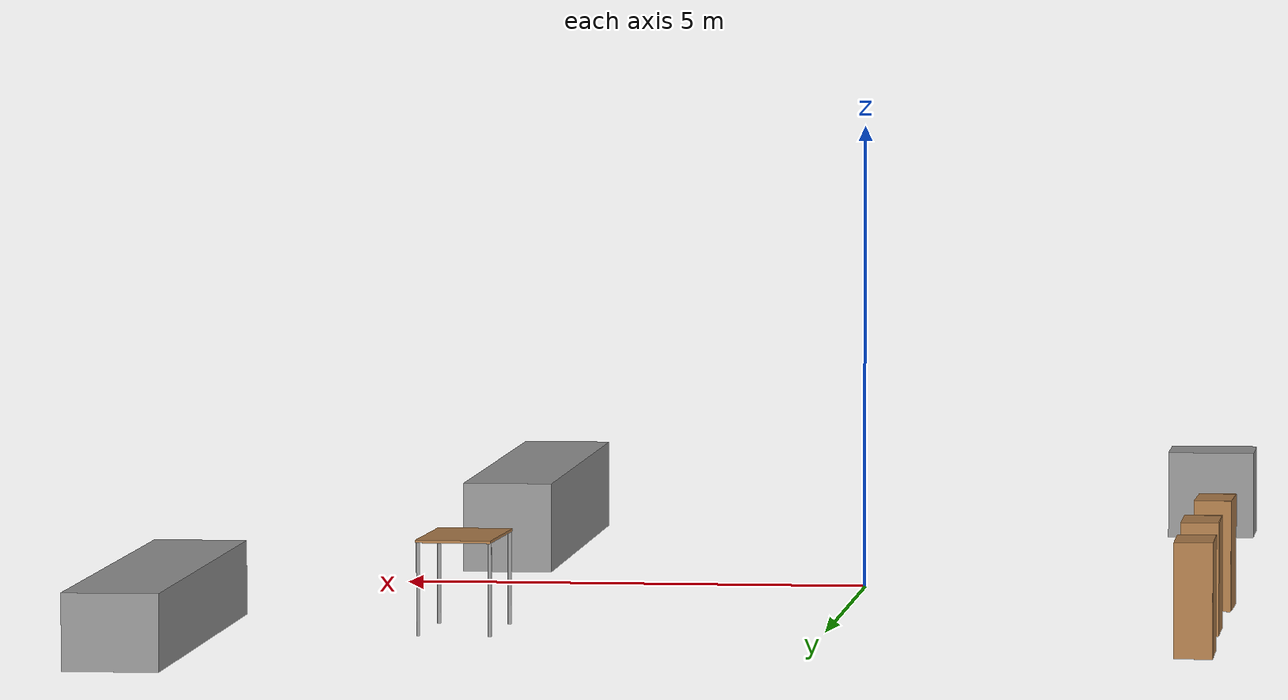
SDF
<?xml version='1.0'?>
<sdf version='1.6'>
  <model name='living_room'>
    <link name='link_2'>
      <pose frame=''>4.32874 -6.4237 0.299392 0 -0 0</pose>
      <inertial>
        <mass>1</mass>
        <inertia>
          <ixx>0.166667</ixx>
          <ixy>0</ixy>
          <ixz>0</ixz>
          <iyy>0.166667</iyy>
          <iyz>0</iyz>
          <izz>0.166667</izz>
        </inertia>
        <pose frame=''>0 0 0 0 -0 0</pose>
      </inertial>
      <gravity>1</gravity>
      <self_collide>0</self_collide>
      <kinematic>0</kinematic>
      <visual name='visual'>
        <pose frame=''>0 0 0 0 -0 0</pose>
        <geometry>
          <box>
            <size>1 6 1</size>
          </box>
        </geometry>
        <material>
          <lighting>1</lighting>
          <script>
            <uri>file://media/materials/scripts/gazebo.material</uri>
            <name>Gazebo/Grey</name>
          </script>
          <shader type='pixel'>
            <normal_map>__default__</normal_map>
          </shader>
          <ambient>0.3 0.3 0.3 1</ambient>
          <diffuse>0.7 0.7 0.7 1</diffuse>
          <specular>0.01 0.01 0.01 1</specular>
          <emissive>0 0 0 1</emissive>
        </material>
        <transparency>0</transparency>
        <cast_shadows>1</cast_shadows>
      </visual>
      <collision name='collision'>
        <laser_retro>0</laser_retro>
        <max_contacts>10</max_contacts>
        <pose frame=''>0 0 0 0 -0 0</pose>
        <geometry>
          <box>
            <size>1 6 1</size>
          </box>
        </geometry>
        <surface>
          <friction>
            <ode>
              <mu>1</mu>
              <mu2>1</mu2>
              <fdir1>0 0 0</fdir1>
              <slip1>0</slip1>
              <slip2>0</slip2>
            </ode>
            <torsional>
              <coefficient>1</coefficient>
              <patch_radius>0</patch_radius>
              <surface_radius>0</surface_radius>
              <use_patch_radius>1</use_patch_radius>
              <ode>
                <slip>0</slip>
              </ode>
            </torsional>
          </friction>
          <bounce>
            <restitution_coefficient>0</restitution_coefficient>
            <threshold>1e+06</threshold>
          </bounce>
          <contact>
            <collide_without_contact>0</collide_without_contact>
            <collide_without_contact_bitmask>1</collide_without_contact_bitmask>
            <collide_bitmask>1</collide_bitmask>
            <ode>
              <soft_cfm>0</soft_cfm>
              <soft_erp>0.2</soft_erp>
              <kp>1e+13</kp>
              <kd>1</kd>
              <max_vel>0.01</max_vel>
              <min_depth>0</min_depth>
            </ode>
            <bullet>
              <split_impulse>1</split_impulse>
              <split_impulse_penetration_threshold>-0.01</split_impulse_penetration_threshold>
              <soft_cfm>0</soft_cfm>
              <soft_erp>0.2</soft_erp>
              <kp>1e+13</kp>
              <kd>1</kd>
            </bullet>
          </contact>
        </surface>
      </collision>
    </link>
    <link name='link_2_clone'>
      <pose frame=''>7.02639 4.75582 0.203645 0 -0 0</pose>
      <inertial>
        <mass>1</mass>
        <inertia>
          <ixx>0.166667</ixx>
          <ixy>0</ixy>
          <ixz>0</ixz>
          <iyy>0.166667</iyy>
          <iyz>0</iyz>
          <izz>0.166667</izz>
        </inertia>
        <pose frame=''>0 0 0 0 -0 0</pose>
      </inertial>
      <self_collide>0</self_collide>
      <kinematic>0</kinematic>
      <gravity>1</gravity>
      <visual name='visual'>
        <pose frame=''>0 0 0 0 -0 0</pose>
        <geometry>
          <box>
            <size>1 6 0.8</size>
          </box>
        </geometry>
        <material>
          <lighting>1</lighting>
          <script>
            <uri>file://media/materials/scripts/gazebo.material</uri>
            <name>Gazebo/Grey</name>
          </script>
          <shader type='pixel'>
            <normal_map>__default__</normal_map>
          </shader>
          <ambient>0.3 0.3 0.3 1</ambient>
          <diffuse>0.7 0.7 0.7 1</diffuse>
          <specular>0.01 0.01 0.01 1</specular>
          <emissive>0 0 0 1</emissive>
        </material>
        <transparency>0</transparency>
        <cast_shadows>1</cast_shadows>
      </visual>
      <collision name='collision'>
        <laser_retro>0</laser_retro>
        <max_contacts>10</max_contacts>
        <pose frame=''>0 0 0 0 -0 0</pose>
        <geometry>
          <box>
            <size>1 6 0.8</size>
          </box>
        </geometry>
        <surface>
          <friction>
            <ode>
              <mu>1</mu>
              <mu2>1</mu2>
              <fdir1>0 0 0</fdir1>
              <slip1>0</slip1>
              <slip2>0</slip2>
            </ode>
            <torsional>
              <coefficient>1</coefficient>
              <patch_radius>0</patch_radius>
              <surface_radius>0</surface_radius>
              <use_patch_radius>1</use_patch_radius>
              <ode>
                <slip>0</slip>
              </ode>
            </torsional>
          </friction>
          <bounce>
            <restitution_coefficient>0</restitution_coefficient>
            <threshold>1e+06</threshold>
          </bounce>
          <contact>
            <collide_without_contact>0</collide_without_contact>
            <collide_without_contact_bitmask>1</collide_without_contact_bitmask>
            <collide_bitmask>1</collide_bitmask>
            <ode>
              <soft_cfm>0</soft_cfm>
              <soft_erp>0.2</soft_erp>
              <kp>1e+13</kp>
              <kd>1</kd>
              <max_vel>0.01</max_vel>
              <min_depth>0</min_depth>
            </ode>
            <bullet>
              <split_impulse>1</split_impulse>
              <split_impulse_penetration_threshold>-0.01</split_impulse_penetration_threshold>
              <soft_cfm>0</soft_cfm>
              <soft_erp>0.2</soft_erp>
              <kp>1e+13</kp>
              <kd>1</kd>
            </bullet>
          </contact>
        </surface>
      </collision>
    </link>
    <link name='link_3'>
      <pose frame=''>-3.39339 -8.98254 0.299392 0 -0 0</pose>
      <inertial>
        <mass>1</mass>
        <inertia>
          <ixx>0.166667</ixx>
          <ixy>0</ixy>
          <ixz>0</ixz>
          <iyy>0.166667</iyy>
          <iyz>0</iyz>
          <izz>0.166667</izz>
        </inertia>
        <pose frame=''>0 0 0 0 -0 0</pose>
      </inertial>
      <gravity>1</gravity>
      <self_collide>0</self_collide>
      <kinematic>0</kinematic>
      <visual name='visual'>
        <pose frame=''>0 0 0 0 -0 0</pose>
        <geometry>
          <box>
            <size>1 1 1</size>
          </box>
        </geometry>
        <material>
          <lighting>1</lighting>
          <script>
            <uri>file://media/materials/scripts/gazebo.material</uri>
            <name>Gazebo/Grey</name>
          </script>
          <shader type='pixel'>
            <normal_map>__default__</normal_map>
          </shader>
          <ambient>0.3 0.3 0.3 1</ambient>
          <diffuse>0.7 0.7 0.7 1</diffuse>
          <specular>0.01 0.01 0.01 1</specular>
          <emissive>0 0 0 1</emissive>
        </material>
        <transparency>0</transparency>
        <cast_shadows>1</cast_shadows>
      </visual>
      <collision name='collision'>
        <laser_retro>0</laser_retro>
        <max_contacts>10</max_contacts>
        <pose frame=''>0 0 0 0 -0 0</pose>
        <geometry>
          <box>
            <size>1 1 1</size>
          </box>
        </geometry>
        <surface>
          <friction>
            <ode>
              <mu>1</mu>
              <mu2>1</mu2>
              <fdir1>0 0 0</fdir1>
              <slip1>0</slip1>
              <slip2>0</slip2>
            </ode>
            <torsional>
              <coefficient>1</coefficient>
              <patch_radius>0</patch_radius>
              <surface_radius>0</surface_radius>
              <use_patch_radius>1</use_patch_radius>
              <ode>
                <slip>0</slip>
              </ode>
            </torsional>
          </friction>
          <bounce>
            <restitution_coefficient>0</restitution_coefficient>
            <threshold>1e+06</threshold>
          </bounce>
          <contact>
            <collide_without_contact>0</collide_without_contact>
            <collide_without_contact_bitmask>1</collide_without_contact_bitmask>
            <collide_bitmask>1</collide_bitmask>
            <ode>
              <soft_cfm>0</soft_cfm>
              <soft_erp>0.2</soft_erp>
              <kp>1e+13</kp>
              <kd>1</kd>
              <max_vel>0.01</max_vel>
              <min_depth>0</min_depth>
            </ode>
            <bullet>
              <split_impulse>1</split_impulse>
              <split_impulse_penetration_threshold>-0.01</split_impulse_penetration_threshold>
              <soft_cfm>0</soft_cfm>
              <soft_erp>0.2</soft_erp>
              <kp>1e+13</kp>
              <kd>1</kd>
            </bullet>
          </contact>
        </surface>
      </collision>
    </link>
    <model name='bookshelf'>
      <static>1</static>
      <link name='link'>
        <inertial>
          <mass>1</mass>
        </inertial>
        <collision name='back'>
          <pose frame=''>0 0.005 0.6 0 -0 0</pose>
          <geometry>
            <box>
              <size>0.9 0.01 1.2</size>
            </box>
          </geometry>
        </collision>
        <visual name='visual1'>
          <pose frame=''>0 0.005 0.6 0 -0 0</pose>
          <geometry>
            <box>
              <size>0.9 0.01 1.2</size>
            </box>
          </geometry>
          <material>
            <script>
              <uri>file://media/materials/scripts/gazebo.material</uri>
              <name>Gazebo/Wood</name>
            </script>
          </material>
        </visual>
        <collision name='left_side'>
          <pose frame=''>0.45 -0.195 0.6 0 -0 0</pose>
          <geometry>
            <box>
              <size>0.02 0.4 1.2</size>
            </box>
          </geometry>
        </collision>
        <visual name='visual2'>
          <pose frame=''>0.45 -0.195 0.6 0 -0 0</pose>
          <geometry>
            <box>
              <size>0.02 0.4 1.2</size>
            </box>
          </geometry>
          <material>
            <script>
              <uri>file://media/materials/scripts/gazebo.material</uri>
              <name>Gazebo/Wood</name>
            </script>
          </material>
        </visual>
        <collision name='right_side'>
          <pose frame=''>-0.45 -0.195 0.6 0 -0 0</pose>
          <geometry>
            <box>
              <size>0.02 0.4 1.2</size>
            </box>
          </geometry>
        </collision>
        <visual name='visual3'>
          <pose frame=''>-0.45 -0.195 0.6 0 -0 0</pose>
          <geometry>
            <box>
              <size>0.02 0.4 1.2</size>
            </box>
          </geometry>
          <material>
            <script>
              <uri>file://media/materials/scripts/gazebo.material</uri>
              <name>Gazebo/Wood</name>
            </script>
          </material>
        </visual>
        <collision name='bottom'>
          <pose frame=''>0 -0.195 0.03 0 -0 0</pose>
          <geometry>
            <box>
              <size>0.88 0.4 0.06</size>
            </box>
          </geometry>
        </collision>
        <visual name='visual4'>
          <pose frame=''>0 -0.195 0.03 0 -0 0</pose>
          <geometry>
            <box>
              <size>0.88 0.4 0.06</size>
            </box>
          </geometry>
          <material>
            <script>
              <uri>file://media/materials/scripts/gazebo.material</uri>
              <name>Gazebo/Wood</name>
            </script>
          </material>
        </visual>
        <collision name='top'>
          <pose frame=''>0 -0.195 1.19 0 -0 0</pose>
          <geometry>
            <box>
              <size>0.88 0.4 0.02</size>
            </box>
          </geometry>
        </collision>
        <visual name='visual5'>
          <pose frame=''>0 -0.195 1.19 0 -0 0</pose>
          <geometry>
            <box>
              <size>0.88 0.4 0.02</size>
            </box>
          </geometry>
          <material>
            <script>
              <uri>file://media/materials/scripts/gazebo.material</uri>
              <name>Gazebo/Wood</name>
            </script>
          </material>
        </visual>
        <collision name='low_shelf'>
          <pose frame=''>0 -0.195 0.43 0 -0 0</pose>
          <geometry>
            <box>
              <size>0.88 0.4 0.02</size>
            </box>
          </geometry>
        </collision>
        <visual name='visual6'>
          <pose frame=''>0 -0.195 0.43 0 -0 0</pose>
          <geometry>
            <box>
              <size>0.88 0.4 0.02</size>
            </box>
          </geometry>
          <material>
            <script>
              <uri>file://media/materials/scripts/gazebo.material</uri>
              <name>Gazebo/Wood</name>
            </script>
          </material>
        </visual>
        <collision name='high_shelf'>
          <pose frame=''>0 -0.195 0.8 0 -0 0</pose>
          <geometry>
            <box>
              <size>0.88 0.4 0.02</size>
            </box>
          </geometry>
        </collision>
        <visual name='visual7'>
          <pose frame=''>0 -0.195 0.8 0 -0 0</pose>
          <geometry>
            <box>
              <size>0.88 0.4 0.02</size>
            </box>
          </geometry>
          <material>
            <script>
              <uri>file://media/materials/scripts/gazebo.material</uri>
              <name>Gazebo/Wood</name>
            </script>
          </material>
        </visual>
      </link>
      <pose frame=''>-3.99427 -0.048755 -0.200608 0 -0 1.55172</pose>
    </model>
    <model name='bookshelf_0'>
      <static>1</static>
      <link name='link'>
        <inertial>
          <mass>1</mass>
        </inertial>
        <collision name='back'>
          <pose frame=''>0 0.005 0.6 0 -0 0</pose>
          <geometry>
            <box>
              <size>0.9 0.01 1.2</size>
            </box>
          </geometry>
        </collision>
        <visual name='visual1'>
          <pose frame=''>0 0.005 0.6 0 -0 0</pose>
          <geometry>
            <box>
              <size>0.9 0.01 1.2</size>
            </box>
          </geometry>
          <material>
            <script>
              <uri>file://media/materials/scripts/gazebo.material</uri>
              <name>Gazebo/Wood</name>
            </script>
          </material>
        </visual>
        <collision name='left_side'>
          <pose frame=''>0.45 -0.195 0.6 0 -0 0</pose>
          <geometry>
            <box>
              <size>0.02 0.4 1.2</size>
            </box>
          </geometry>
        </collision>
        <visual name='visual2'>
          <pose frame=''>0.45 -0.195 0.6 0 -0 0</pose>
          <geometry>
            <box>
              <size>0.02 0.4 1.2</size>
            </box>
          </geometry>
          <material>
            <script>
              <uri>file://media/materials/scripts/gazebo.material</uri>
              <name>Gazebo/Wood</name>
            </script>
          </material>
        </visual>
        <collision name='right_side'>
          <pose frame=''>-0.45 -0.195 0.6 0 -0 0</pose>
          <geometry>
            <box>
              <size>0.02 0.4 1.2</size>
            </box>
          </geometry>
        </collision>
        <visual name='visual3'>
          <pose frame=''>-0.45 -0.195 0.6 0 -0 0</pose>
          <geometry>
            <box>
              <size>0.02 0.4 1.2</size>
            </box>
          </geometry>
          <material>
            <script>
              <uri>file://media/materials/scripts/gazebo.material</uri>
              <name>Gazebo/Wood</name>
            </script>
          </material>
        </visual>
        <collision name='bottom'>
          <pose frame=''>0 -0.195 0.03 0 -0 0</pose>
          <geometry>
            <box>
              <size>0.88 0.4 0.06</size>
            </box>
          </geometry>
        </collision>
        <visual name='visual4'>
          <pose frame=''>0 -0.195 0.03 0 -0 0</pose>
          <geometry>
            <box>
              <size>0.88 0.4 0.06</size>
            </box>
          </geometry>
          <material>
            <script>
              <uri>file://media/materials/scripts/gazebo.material</uri>
              <name>Gazebo/Wood</name>
            </script>
          </material>
        </visual>
        <collision name='top'>
          <pose frame=''>0 -0.195 1.19 0 -0 0</pose>
          <geometry>
            <box>
              <size>0.88 0.4 0.02</size>
            </box>
          </geometry>
        </collision>
        <visual name='visual5'>
          <pose frame=''>0 -0.195 1.19 0 -0 0</pose>
          <geometry>
            <box>
              <size>0.88 0.4 0.02</size>
            </box>
          </geometry>
          <material>
            <script>
              <uri>file://media/materials/scripts/gazebo.material</uri>
              <name>Gazebo/Wood</name>
            </script>
          </material>
        </visual>
        <collision name='low_shelf'>
          <pose frame=''>0 -0.195 0.43 0 -0 0</pose>
          <geometry>
            <box>
              <size>0.88 0.4 0.02</size>
            </box>
          </geometry>
        </collision>
        <visual name='visual6'>
          <pose frame=''>0 -0.195 0.43 0 -0 0</pose>
          <geometry>
            <box>
              <size>0.88 0.4 0.02</size>
            </box>
          </geometry>
          <material>
            <script>
              <uri>file://media/materials/scripts/gazebo.material</uri>
              <name>Gazebo/Wood</name>
            </script>
          </material>
        </visual>
        <collision name='high_shelf'>
          <pose frame=''>0 -0.195 0.8 0 -0 0</pose>
          <geometry>
            <box>
              <size>0.88 0.4 0.02</size>
            </box>
          </geometry>
        </collision>
        <visual name='visual7'>
          <pose frame=''>0 -0.195 0.8 0 -0 0</pose>
          <geometry>
            <box>
              <size>0.88 0.4 0.02</size>
            </box>
          </geometry>
          <material>
            <script>
              <uri>file://media/materials/scripts/gazebo.material</uri>
              <name>Gazebo/Wood</name>
            </script>
          </material>
        </visual>
      </link>
      <pose frame=''>-3.965 2.62617 -0.200608 0 -0 1.57154</pose>
    </model>
    <model name='bookshelf_1'>
      <static>1</static>
      <link name='link'>
        <inertial>
          <mass>1</mass>
        </inertial>
        <collision name='back'>
          <pose frame=''>0 0.005 0.6 0 -0 0</pose>
          <geometry>
            <box>
              <size>0.9 0.01 1.2</size>
            </box>
          </geometry>
        </collision>
        <visual name='visual1'>
          <pose frame=''>0 0.005 0.6 0 -0 0</pose>
          <geometry>
            <box>
              <size>0.9 0.01 1.2</size>
            </box>
          </geometry>
          <material>
            <script>
              <uri>file://media/materials/scripts/gazebo.material</uri>
              <name>Gazebo/Wood</name>
            </script>
          </material>
        </visual>
        <collision name='left_side'>
          <pose frame=''>0.45 -0.195 0.6 0 -0 0</pose>
          <geometry>
            <box>
              <size>0.02 0.4 1.2</size>
            </box>
          </geometry>
        </collision>
        <visual name='visual2'>
          <pose frame=''>0.45 -0.195 0.6 0 -0 0</pose>
          <geometry>
            <box>
              <size>0.02 0.4 1.2</size>
            </box>
          </geometry>
          <material>
            <script>
              <uri>file://media/materials/scripts/gazebo.material</uri>
              <name>Gazebo/Wood</name>
            </script>
          </material>
        </visual>
        <collision name='right_side'>
          <pose frame=''>-0.45 -0.195 0.6 0 -0 0</pose>
          <geometry>
            <box>
              <size>0.02 0.4 1.2</size>
            </box>
          </geometry>
        </collision>
        <visual name='visual3'>
          <pose frame=''>-0.45 -0.195 0.6 0 -0 0</pose>
          <geometry>
            <box>
              <size>0.02 0.4 1.2</size>
            </box>
          </geometry>
          <material>
            <script>
              <uri>file://media/materials/scripts/gazebo.material</uri>
              <name>Gazebo/Wood</name>
            </script>
          </material>
        </visual>
        <collision name='bottom'>
          <pose frame=''>0 -0.195 0.03 0 -0 0</pose>
          <geometry>
            <box>
              <size>0.88 0.4 0.06</size>
            </box>
          </geometry>
        </collision>
        <visual name='visual4'>
          <pose frame=''>0 -0.195 0.03 0 -0 0</pose>
          <geometry>
            <box>
              <size>0.88 0.4 0.06</size>
            </box>
          </geometry>
          <material>
            <script>
              <uri>file://media/materials/scripts/gazebo.material</uri>
              <name>Gazebo/Wood</name>
            </script>
          </material>
        </visual>
        <collision name='top'>
          <pose frame=''>0 -0.195 1.19 0 -0 0</pose>
          <geometry>
            <box>
              <size>0.88 0.4 0.02</size>
            </box>
          </geometry>
        </collision>
        <visual name='visual5'>
          <pose frame=''>0 -0.195 1.19 0 -0 0</pose>
          <geometry>
            <box>
              <size>0.88 0.4 0.02</size>
            </box>
          </geometry>
          <material>
            <script>
              <uri>file://media/materials/scripts/gazebo.material</uri>
              <name>Gazebo/Wood</name>
            </script>
          </material>
        </visual>
        <collision name='low_shelf'>
          <pose frame=''>0 -0.195 0.43 0 -0 0</pose>
          <geometry>
            <box>
              <size>0.88 0.4 0.02</size>
            </box>
          </geometry>
        </collision>
        <visual name='visual6'>
          <pose frame=''>0 -0.195 0.43 0 -0 0</pose>
          <geometry>
            <box>
              <size>0.88 0.4 0.02</size>
            </box>
          </geometry>
          <material>
            <script>
              <uri>file://media/materials/scripts/gazebo.material</uri>
              <name>Gazebo/Wood</name>
            </script>
          </material>
        </visual>
        <collision name='high_shelf'>
          <pose frame=''>0 -0.195 0.8 0 -0 0</pose>
          <geometry>
            <box>
              <size>0.88 0.4 0.02</size>
            </box>
          </geometry>
        </collision>
        <visual name='visual7'>
          <pose frame=''>0 -0.195 0.8 0 -0 0</pose>
          <geometry>
            <box>
              <size>0.88 0.4 0.02</size>
            </box>
          </geometry>
          <material>
            <script>
              <uri>file://media/materials/scripts/gazebo.material</uri>
              <name>Gazebo/Wood</name>
            </script>
          </material>
        </visual>
      </link>
      <pose frame=''>-4.00092 4.9431 -0.200608 0 -0 1.57578</pose>
    </model>
    <model name='table'>
      <static>1</static>
      <link name='link'>
        <collision name='surface'>
          <pose frame=''>0 0 1 0 -0 0</pose>
          <geometry>
            <box>
              <size>1.5 0.8 0.03</size>
            </box>
          </geometry>
          <surface>
            <friction>
              <ode>
                <mu>0.6</mu>
                <mu2>0.6</mu2>
              </ode>
            </friction>
          </surface>
        </collision>
        <visual name='visual1'>
          <pose frame=''>0 0 1 0 -0 0</pose>
          <geometry>
            <box>
              <size>1.5 0.8 0.03</size>
            </box>
          </geometry>
          <material>
            <script>
              <uri>file://media/materials/scripts/gazebo.material</uri>
              <name>Gazebo/Wood</name>
            </script>
          </material>
        </visual>
        <collision name='front_left_leg'>
          <pose frame=''>0.68 0.38 0.5 0 -0 0</pose>
          <geometry>
            <cylinder>
              <radius>0.02</radius>
              <length>1</length>
            </cylinder>
          </geometry>
        </collision>
        <visual name='front_left_leg'>
          <pose frame=''>0.68 0.38 0.5 0 -0 0</pose>
          <geometry>
            <cylinder>
              <radius>0.02</radius>
              <length>1</length>
            </cylinder>
          </geometry>
          <material>
            <script>
              <uri>file://media/materials/scripts/gazebo.material</uri>
              <name>Gazebo/Grey</name>
            </script>
          </material>
        </visual>
        <collision name='front_right_leg'>
          <pose frame=''>0.68 -0.38 0.5 0 -0 0</pose>
          <geometry>
            <cylinder>
              <radius>0.02</radius>
              <length>1</length>
            </cylinder>
          </geometry>
        </collision>
        <visual name='front_right_leg'>
          <pose frame=''>0.68 -0.38 0.5 0 -0 0</pose>
          <geometry>
            <cylinder>
              <radius>0.02</radius>
              <length>1</length>
            </cylinder>
          </geometry>
          <material>
            <script>
              <uri>file://media/materials/scripts/gazebo.material</uri>
              <name>Gazebo/Grey</name>
            </script>
          </material>
        </visual>
        <collision name='back_right_leg'>
          <pose frame=''>-0.68 -0.38 0.5 0 -0 0</pose>
          <geometry>
            <cylinder>
              <radius>0.02</radius>
              <length>1</length>
            </cylinder>
          </geometry>
        </collision>
        <visual name='back_right_leg'>
          <pose frame=''>-0.68 -0.38 0.5 0 -0 0</pose>
          <geometry>
            <cylinder>
              <radius>0.02</radius>
              <length>1</length>
            </cylinder>
          </geometry>
          <material>
            <script>
              <uri>file://media/materials/scripts/gazebo.material</uri>
              <name>Gazebo/Grey</name>
            </script>
          </material>
        </visual>
        <collision name='back_left_leg'>
          <pose frame=''>-0.68 0.38 0.5 0 -0 0</pose>
          <geometry>
            <cylinder>
              <radius>0.02</radius>
              <length>1</length>
            </cylinder>
          </geometry>
        </collision>
        <visual name='back_left_leg'>
          <pose frame=''>-0.68 0.38 0.5 0 -0 0</pose>
          <geometry>
            <cylinder>
              <radius>0.02</radius>
              <length>1</length>
            </cylinder>
          </geometry>
          <material>
            <script>
              <uri>file://media/materials/scripts/gazebo.material</uri>
              <name>Gazebo/Grey</name>
            </script>
          </material>
        </visual>
      </link>
      <pose frame=''>3.99843 3.12991 -0.200608 0 0 -1.60666</pose>
    </model>
    <static>0</static>
    <allow_auto_disable>1</allow_auto_disable>
  </model>
</sdf>
